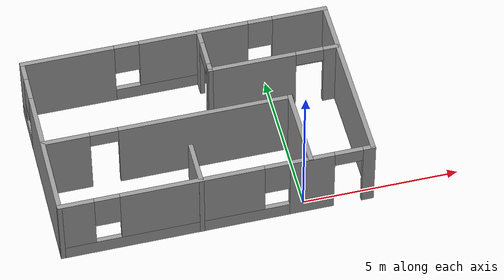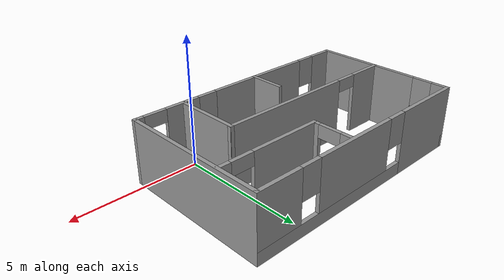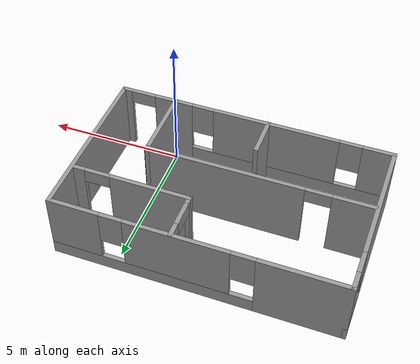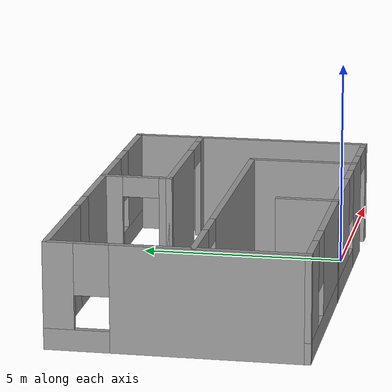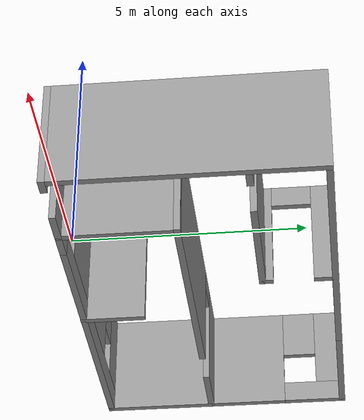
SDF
<?xml version='1.0'?>
<sdf version='1.7'>
  <model name='room'>
    <pose>-2.82751 2.63362 0 0 -0 0</pose>
    <link name='Wall_10'>
      <collision name='Wall_10_Collision'>
        <geometry>
          <box>
            <size>2.68133 0.15 2.5</size>
          </box>
        </geometry>
        <pose>0 0 1.25 0 -0 0</pose>
      </collision>
      <visual name='Wall_10_Visual'>
        <pose>0 0 1.25 0 -0 0</pose>
        <geometry>
          <box>
            <size>2.68133 0.15 2.5</size>
          </box>
        </geometry>
        <material>
          <script>
            <uri>file://media/materials/scripts/gazebo.material</uri>
            <name>Gazebo/Grey</name>
          </script>
          <ambient>1 1 1 1</ambient>
        </material>
        <meta>
          <layer>0</layer>
        </meta>
      </visual>
      <pose>2.94192 -1.63607 0 0 -0 1.5708</pose>
    </link>
    <link name='Wall_11'>
      <pose>-0.968497 -0.370403 0 0 -0 3.14159</pose>
      <visual name='Wall_11_Visual_0'>
        <pose>-1.20839 0 1.25 0 -0 0</pose>
        <geometry>
          <box>
            <size>5.58323 0.15 2.5</size>
          </box>
        </geometry>
        <material>
          <script>
            <uri>file://media/materials/scripts/gazebo.material</uri>
            <name>Gazebo/Grey</name>
          </script>
          <ambient>1 1 1 1</ambient>
        </material>
        <meta>
          <layer>0</layer>
        </meta>
      </visual>
      <collision name='Wall_11_Collision_0'>
        <geometry>
          <box>
            <size>5.58323 0.15 2.5</size>
          </box>
        </geometry>
        <pose>-1.20839 0 1.25 0 -0 0</pose>
      </collision>
      <visual name='Wall_11_Visual_1'>
        <pose>3.24161 0 1.25 0 -0 0</pose>
        <geometry>
          <box>
            <size>1.51677 0.15 2.5</size>
          </box>
        </geometry>
        <material>
          <script>
            <uri>file://media/materials/scripts/gazebo.material</uri>
            <name>Gazebo/Grey</name>
          </script>
          <ambient>1 1 1 1</ambient>
        </material>
        <meta>
          <layer>0</layer>
        </meta>
      </visual>
      <collision name='Wall_11_Collision_1'>
        <geometry>
          <box>
            <size>1.51677 0.15 2.5</size>
          </box>
        </geometry>
        <pose>3.24161 0 1.25 0 -0 0</pose>
      </collision>
      <visual name='Wall_11_Visual_2'>
        <pose>2.03323 0 2.25 0 -0 0</pose>
        <geometry>
          <box>
            <size>0.9 0.15 0.5</size>
          </box>
        </geometry>
        <material>
          <script>
            <uri>file://media/materials/scripts/gazebo.material</uri>
            <name>Gazebo/Grey</name>
          </script>
          <ambient>1 1 1 1</ambient>
        </material>
        <meta>
          <layer>0</layer>
        </meta>
      </visual>
      <collision name='Wall_11_Collision_2'>
        <geometry>
          <box>
            <size>0.9 0.15 0.5</size>
          </box>
        </geometry>
        <pose>2.03323 0 2.25 0 -0 0</pose>
      </collision>
    </link>
    <link name='Wall_13'>
      <pose>2.82641 1.30256 0 0 -0 3.14159</pose>
      <visual name='Wall_13_Visual_0'>
        <pose>-1.87402 0 1.25 0 -0 0</pose>
        <geometry>
          <box>
            <size>0.501968 0.15 2.5</size>
          </box>
        </geometry>
        <material>
          <script>
            <uri>file://media/materials/scripts/gazebo.material</uri>
            <name>Gazebo/Grey</name>
          </script>
          <ambient>1 1 1 1</ambient>
        </material>
        <meta>
          <layer>0</layer>
        </meta>
      </visual>
      <collision name='Wall_13_Collision_0'>
        <geometry>
          <box>
            <size>0.501968 0.15 2.5</size>
          </box>
        </geometry>
        <pose>-1.87402 0 1.25 0 -0 0</pose>
      </collision>
      <visual name='Wall_13_Visual_1'>
        <pose>0.700984 0 1.25 0 -0 0</pose>
        <geometry>
          <box>
            <size>2.84803 0.15 2.5</size>
          </box>
        </geometry>
        <material>
          <script>
            <uri>file://media/materials/scripts/gazebo.material</uri>
            <name>Gazebo/Grey</name>
          </script>
          <ambient>1 1 1 1</ambient>
        </material>
        <meta>
          <layer>0</layer>
        </meta>
      </visual>
      <collision name='Wall_13_Collision_1'>
        <geometry>
          <box>
            <size>2.84803 0.15 2.5</size>
          </box>
        </geometry>
        <pose>0.700984 0 1.25 0 -0 0</pose>
      </collision>
      <visual name='Wall_13_Visual_2'>
        <pose>-1.17303 0 2.25 0 -0 0</pose>
        <geometry>
          <box>
            <size>0.9 0.15 0.5</size>
          </box>
        </geometry>
        <material>
          <script>
            <uri>file://media/materials/scripts/gazebo.material</uri>
            <name>Gazebo/Grey</name>
          </script>
          <ambient>1 1 1 1</ambient>
        </material>
        <meta>
          <layer>0</layer>
        </meta>
      </visual>
      <collision name='Wall_13_Collision_2'>
        <geometry>
          <box>
            <size>0.9 0.15 0.5</size>
          </box>
        </geometry>
        <pose>-1.17303 0 2.25 0 -0 0</pose>
      </collision>
    </link>
    <link name='Wall_14'>
      <pose>0.776411 2.10256 0 0 -0 1.5708</pose>
      <visual name='Wall_14_Visual_0'>
        <pose>-0.714292 0 1.25 0 -0 0</pose>
        <geometry>
          <box>
            <size>0.321416 0.15 2.5</size>
          </box>
        </geometry>
        <material>
          <script>
            <uri>file://media/materials/scripts/gazebo.material</uri>
            <name>Gazebo/Grey</name>
          </script>
          <ambient>1 1 1 1</ambient>
        </material>
        <meta>
          <layer>0</layer>
        </meta>
      </visual>
      <collision name='Wall_14_Collision_0'>
        <geometry>
          <box>
            <size>0.321416 0.15 2.5</size>
          </box>
        </geometry>
        <pose>-0.714292 0 1.25 0 -0 0</pose>
      </collision>
      <visual name='Wall_14_Visual_1'>
        <pose>0.610708 0 1.25 0 -0 0</pose>
        <geometry>
          <box>
            <size>0.528584 0.15 2.5</size>
          </box>
        </geometry>
        <material>
          <script>
            <uri>file://media/materials/scripts/gazebo.material</uri>
            <name>Gazebo/Grey</name>
          </script>
          <ambient>1 1 1 1</ambient>
        </material>
        <meta>
          <layer>0</layer>
        </meta>
      </visual>
      <collision name='Wall_14_Collision_1'>
        <geometry>
          <box>
            <size>0.528584 0.15 2.5</size>
          </box>
        </geometry>
        <pose>0.610708 0 1.25 0 -0 0</pose>
      </collision>
      <visual name='Wall_14_Visual_2'>
        <pose>-0.103584 0 2.25 0 -0 0</pose>
        <geometry>
          <box>
            <size>0.9 0.15 0.5</size>
          </box>
        </geometry>
        <material>
          <script>
            <uri>file://media/materials/scripts/gazebo.material</uri>
            <name>Gazebo/Grey</name>
          </script>
          <ambient>1 1 1 1</ambient>
        </material>
        <meta>
          <layer>0</layer>
        </meta>
      </visual>
      <collision name='Wall_14_Collision_2'>
        <geometry>
          <box>
            <size>0.9 0.15 0.5</size>
          </box>
        </geometry>
        <pose>-0.103584 0 2.25 0 -0 0</pose>
      </collision>
    </link>
    <link name='Wall_20'>
      <collision name='Wall_20_Collision'>
        <geometry>
          <box>
            <size>1.5 0.15 2.5</size>
          </box>
        </geometry>
        <pose>0 0 1.25 0 -0 0</pose>
      </collision>
      <visual name='Wall_20_Visual'>
        <pose>0 0 1.25 0 -0 0</pose>
        <geometry>
          <box>
            <size>1.5 0.15 2.5</size>
          </box>
        </geometry>
        <material>
          <script>
            <uri>file://media/materials/scripts/gazebo.material</uri>
            <name>Gazebo/Grey</name>
          </script>
          <ambient>1 1 1 1</ambient>
        </material>
        <meta>
          <layer>0</layer>
        </meta>
      </visual>
      <pose>-0.514365 -2.25253 0 0 -0 1.5708</pose>
    </link>
    <link name='Wall_5'>
      <pose>0 2.92753 0 0 -0 0</pose>
      <visual name='Wall_5_Visual_0'>
        <pose>-3.48594 0 1.25 0 -0 0</pose>
        <geometry>
          <box>
            <size>3.02811 0.15 2.5</size>
          </box>
        </geometry>
        <material>
          <script>
            <uri>file://media/materials/scripts/gazebo.material</uri>
            <name>Gazebo/Grey</name>
          </script>
          <ambient>1 1 1 1</ambient>
        </material>
        <meta>
          <layer>0</layer>
        </meta>
      </visual>
      <collision name='Wall_5_Collision_0'>
        <geometry>
          <box>
            <size>3.02811 0.15 2.5</size>
          </box>
        </geometry>
        <pose>-3.48594 0 1.25 0 -0 0</pose>
      </collision>
      <visual name='Wall_5_Visual_1'>
        <pose>1.51406 0 0.25 0 -0 0</pose>
        <geometry>
          <box>
            <size>6.97189 0.15 0.5</size>
          </box>
        </geometry>
        <material>
          <script>
            <uri>file://media/materials/scripts/gazebo.material</uri>
            <name>Gazebo/Grey</name>
          </script>
          <ambient>1 1 1 1</ambient>
        </material>
        <meta>
          <layer>0</layer>
        </meta>
      </visual>
      <collision name='Wall_5_Collision_1'>
        <geometry>
          <box>
            <size>6.97189 0.15 0.5</size>
          </box>
        </geometry>
        <pose>1.51406 0 0.25 0 -0 0</pose>
      </collision>
      <visual name='Wall_5_Visual_2'>
        <pose>0.607639 0 1.5 0 -0 0</pose>
        <geometry>
          <box>
            <size>3.55905 0.15 2</size>
          </box>
        </geometry>
        <material>
          <script>
            <uri>file://media/materials/scripts/gazebo.material</uri>
            <name>Gazebo/Grey</name>
          </script>
          <ambient>1 1 1 1</ambient>
        </material>
        <meta>
          <layer>0</layer>
        </meta>
      </visual>
      <collision name='Wall_5_Collision_2'>
        <geometry>
          <box>
            <size>3.55905 0.15 2</size>
          </box>
        </geometry>
        <pose>0.607639 0 1.5 0 -0 0</pose>
      </collision>
      <visual name='Wall_5_Visual_3'>
        <pose>4.09358 0 1.5 0 -0 0</pose>
        <geometry>
          <box>
            <size>1.81284 0.15 2</size>
          </box>
        </geometry>
        <material>
          <script>
            <uri>file://media/materials/scripts/gazebo.material</uri>
            <name>Gazebo/Grey</name>
          </script>
          <ambient>1 1 1 1</ambient>
        </material>
        <meta>
          <layer>0</layer>
        </meta>
      </visual>
      <collision name='Wall_5_Collision_3'>
        <geometry>
          <box>
            <size>1.81284 0.15 2</size>
          </box>
        </geometry>
        <pose>4.09358 0 1.5 0 -0 0</pose>
      </collision>
      <visual name='Wall_5_Visual_4'>
        <pose>-1.57189 0 1.9 0 -0 0</pose>
        <geometry>
          <box>
            <size>0.8 0.15 1.2</size>
          </box>
        </geometry>
        <material>
          <script>
            <uri>file://media/materials/scripts/gazebo.material</uri>
            <name>Gazebo/Grey</name>
          </script>
          <ambient>1 1 1 1</ambient>
        </material>
        <meta>
          <layer>0</layer>
        </meta>
      </visual>
      <collision name='Wall_5_Collision_4'>
        <geometry>
          <box>
            <size>0.8 0.15 1.2</size>
          </box>
        </geometry>
        <pose>-1.57189 0 1.9 0 -0 0</pose>
      </collision>
      <visual name='Wall_5_Visual_5'>
        <pose>2.78716 0 1.9 0 -0 0</pose>
        <geometry>
          <box>
            <size>0.8 0.15 1.2</size>
          </box>
        </geometry>
        <material>
          <script>
            <uri>file://media/materials/scripts/gazebo.material</uri>
            <name>Gazebo/Grey</name>
          </script>
          <ambient>1 1 1 1</ambient>
        </material>
        <meta>
          <layer>0</layer>
        </meta>
      </visual>
      <collision name='Wall_5_Collision_5'>
        <geometry>
          <box>
            <size>0.8 0.15 1.2</size>
          </box>
        </geometry>
        <pose>2.78716 0 1.9 0 -0 0</pose>
      </collision>
    </link>
    <link name='Wall_6'>
      <collision name='Wall_6_Collision'>
        <geometry>
          <box>
            <size>6 0.15 2.5</size>
          </box>
        </geometry>
        <pose>0 0 1.25 0 -0 0</pose>
      </collision>
      <visual name='Wall_6_Visual'>
        <pose>0 0 1.25 0 -0 0</pose>
        <geometry>
          <box>
            <size>6 0.15 2.5</size>
          </box>
        </geometry>
        <material>
          <script>
            <uri>file://media/materials/scripts/gazebo.material</uri>
            <name>Gazebo/Grey</name>
          </script>
          <ambient>1 1 1 1</ambient>
        </material>
        <meta>
          <layer>0</layer>
        </meta>
      </visual>
      <pose>4.925 0.002526 0 0 -0 -1.5708</pose>
    </link>
    <link name='Wall_7'>
      <pose>0 -2.92247 0 0 -0 3.14159</pose>
      <visual name='Wall_7_Visual_0'>
        <pose>-4.8021 0 1.25 0 -0 0</pose>
        <geometry>
          <box>
            <size>0.395798 0.15 2.5</size>
          </box>
        </geometry>
        <material>
          <script>
            <uri>file://media/materials/scripts/gazebo.material</uri>
            <name>Gazebo/Grey</name>
          </script>
          <ambient>1 1 1 1</ambient>
        </material>
        <meta>
          <layer>0</layer>
        </meta>
      </visual>
      <collision name='Wall_7_Collision_0'>
        <geometry>
          <box>
            <size>0.395798 0.15 2.5</size>
          </box>
        </geometry>
        <pose>-4.8021 0 1.25 0 -0 0</pose>
      </collision>
      <visual name='Wall_7_Visual_1'>
        <pose>-2.9943 0 1.25 0 -0 0</pose>
        <geometry>
          <box>
            <size>1.4198 0.15 2.5</size>
          </box>
        </geometry>
        <material>
          <script>
            <uri>file://media/materials/scripts/gazebo.material</uri>
            <name>Gazebo/Grey</name>
          </script>
          <ambient>1 1 1 1</ambient>
        </material>
        <meta>
          <layer>0</layer>
        </meta>
      </visual>
      <collision name='Wall_7_Collision_1'>
        <geometry>
          <box>
            <size>1.4198 0.15 2.5</size>
          </box>
        </geometry>
        <pose>-2.9943 0 1.25 0 -0 0</pose>
      </collision>
      <visual name='Wall_7_Visual_2'>
        <pose>1.3578 0 0.25 0 -0 0</pose>
        <geometry>
          <box>
            <size>7.2844 0.15 0.5</size>
          </box>
        </geometry>
        <material>
          <script>
            <uri>file://media/materials/scripts/gazebo.material</uri>
            <name>Gazebo/Grey</name>
          </script>
          <ambient>1 1 1 1</ambient>
        </material>
        <meta>
          <layer>0</layer>
        </meta>
      </visual>
      <collision name='Wall_7_Collision_2'>
        <geometry>
          <box>
            <size>7.2844 0.15 0.5</size>
          </box>
        </geometry>
        <pose>1.3578 0 0.25 0 -0 0</pose>
      </collision>
      <visual name='Wall_7_Visual_3'>
        <pose>0.785193 0 1.5 0 -0 0</pose>
        <geometry>
          <box>
            <size>4.53919 0.15 2</size>
          </box>
        </geometry>
        <material>
          <script>
            <uri>file://media/materials/scripts/gazebo.material</uri>
            <name>Gazebo/Grey</name>
          </script>
          <ambient>1 1 1 1</ambient>
        </material>
        <meta>
          <layer>0</layer>
        </meta>
      </visual>
      <collision name='Wall_7_Collision_3'>
        <geometry>
          <box>
            <size>4.53919 0.15 2</size>
          </box>
        </geometry>
        <pose>0.785193 0 1.5 0 -0 0</pose>
      </collision>
      <visual name='Wall_7_Visual_4'>
        <pose>4.42739 0 1.5 0 -0 0</pose>
        <geometry>
          <box>
            <size>1.14521 0.15 2</size>
          </box>
        </geometry>
        <material>
          <script>
            <uri>file://media/materials/scripts/gazebo.material</uri>
            <name>Gazebo/Grey</name>
          </script>
          <ambient>1 1 1 1</ambient>
        </material>
        <meta>
          <layer>0</layer>
        </meta>
      </visual>
      <collision name='Wall_7_Collision_4'>
        <geometry>
          <box>
            <size>1.14521 0.15 2</size>
          </box>
        </geometry>
        <pose>4.42739 0 1.5 0 -0 0</pose>
      </collision>
      <visual name='Wall_7_Visual_5'>
        <pose>-1.8844 0 1.9 0 -0 0</pose>
        <geometry>
          <box>
            <size>0.8 0.15 1.2</size>
          </box>
        </geometry>
        <material>
          <script>
            <uri>file://media/materials/scripts/gazebo.material</uri>
            <name>Gazebo/Grey</name>
          </script>
          <ambient>1 1 1 1</ambient>
        </material>
        <meta>
          <layer>0</layer>
        </meta>
      </visual>
      <collision name='Wall_7_Collision_5'>
        <geometry>
          <box>
            <size>0.8 0.15 1.2</size>
          </box>
        </geometry>
        <pose>-1.8844 0 1.9 0 -0 0</pose>
      </collision>
      <visual name='Wall_7_Visual_6'>
        <pose>3.45479 0 1.9 0 -0 0</pose>
        <geometry>
          <box>
            <size>0.8 0.15 1.2</size>
          </box>
        </geometry>
        <material>
          <script>
            <uri>file://media/materials/scripts/gazebo.material</uri>
            <name>Gazebo/Grey</name>
          </script>
          <ambient>1 1 1 1</ambient>
        </material>
        <meta>
          <layer>0</layer>
        </meta>
      </visual>
      <collision name='Wall_7_Collision_6'>
        <geometry>
          <box>
            <size>0.8 0.15 1.2</size>
          </box>
        </geometry>
        <pose>3.45479 0 1.9 0 -0 0</pose>
      </collision>
      <visual name='Wall_7_Visual_7'>
        <pose>-4.1542 0 2.25 0 -0 0</pose>
        <geometry>
          <box>
            <size>0.9 0.15 0.5</size>
          </box>
        </geometry>
        <material>
          <script>
            <uri>file://media/materials/scripts/gazebo.material</uri>
            <name>Gazebo/Grey</name>
          </script>
          <ambient>1 1 1 1</ambient>
        </material>
        <meta>
          <layer>0</layer>
        </meta>
      </visual>
      <collision name='Wall_7_Collision_7'>
        <geometry>
          <box>
            <size>0.9 0.15 0.5</size>
          </box>
        </geometry>
        <pose>-4.1542 0 2.25 0 -0 0</pose>
      </collision>
    </link>
    <link name='Wall_8'>
      <pose>-4.925 0.002526 0 0 -0 1.5708</pose>
      <visual name='Wall_8_Visual_0'>
        <pose>-0.753364 0 1.25 0 -0 0</pose>
        <geometry>
          <box>
            <size>4.49327 0.15 2.5</size>
          </box>
        </geometry>
        <material>
          <script>
            <uri>file://media/materials/scripts/gazebo.material</uri>
            <name>Gazebo/Grey</name>
          </script>
          <ambient>1 1 1 1</ambient>
        </material>
        <meta>
          <layer>0</layer>
        </meta>
      </visual>
      <collision name='Wall_8_Collision_0'>
        <geometry>
          <box>
            <size>4.49327 0.15 2.5</size>
          </box>
        </geometry>
        <pose>-0.753364 0 1.25 0 -0 0</pose>
      </collision>
      <visual name='Wall_8_Visual_1'>
        <pose>2.24664 0 0.25 0 -0 0</pose>
        <geometry>
          <box>
            <size>1.50673 0.15 0.5</size>
          </box>
        </geometry>
        <material>
          <script>
            <uri>file://media/materials/scripts/gazebo.material</uri>
            <name>Gazebo/Grey</name>
          </script>
          <ambient>1 1 1 1</ambient>
        </material>
        <meta>
          <layer>0</layer>
        </meta>
      </visual>
      <collision name='Wall_8_Collision_1'>
        <geometry>
          <box>
            <size>1.50673 0.15 0.5</size>
          </box>
        </geometry>
        <pose>2.24664 0 0.25 0 -0 0</pose>
      </collision>
      <visual name='Wall_8_Visual_2'>
        <pose>2.64664 0 1.5 0 -0 0</pose>
        <geometry>
          <box>
            <size>0.706727 0.15 2</size>
          </box>
        </geometry>
        <material>
          <script>
            <uri>file://media/materials/scripts/gazebo.material</uri>
            <name>Gazebo/Grey</name>
          </script>
          <ambient>1 1 1 1</ambient>
        </material>
        <meta>
          <layer>0</layer>
        </meta>
      </visual>
      <collision name='Wall_8_Collision_2'>
        <geometry>
          <box>
            <size>0.706727 0.15 2</size>
          </box>
        </geometry>
        <pose>2.64664 0 1.5 0 -0 0</pose>
      </collision>
      <visual name='Wall_8_Visual_3'>
        <pose>1.89327 0 1.9 0 -0 0</pose>
        <geometry>
          <box>
            <size>0.8 0.15 1.2</size>
          </box>
        </geometry>
        <material>
          <script>
            <uri>file://media/materials/scripts/gazebo.material</uri>
            <name>Gazebo/Grey</name>
          </script>
          <ambient>1 1 1 1</ambient>
        </material>
        <meta>
          <layer>0</layer>
        </meta>
      </visual>
      <collision name='Wall_8_Collision_3'>
        <geometry>
          <box>
            <size>0.8 0.15 1.2</size>
          </box>
        </geometry>
        <pose>1.89327 0 1.9 0 -0 0</pose>
      </collision>
    </link>
    <static>1</static>
  </model>
</sdf>
